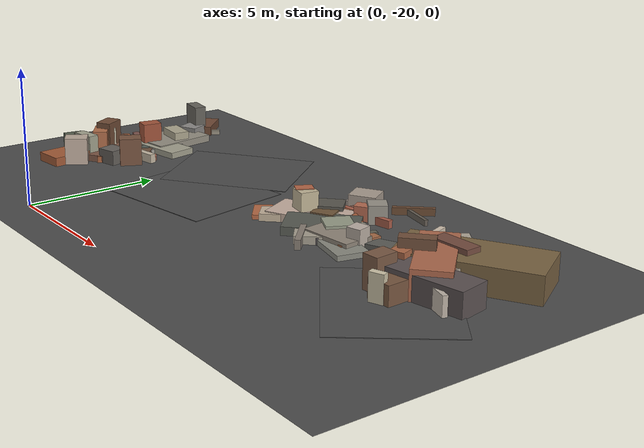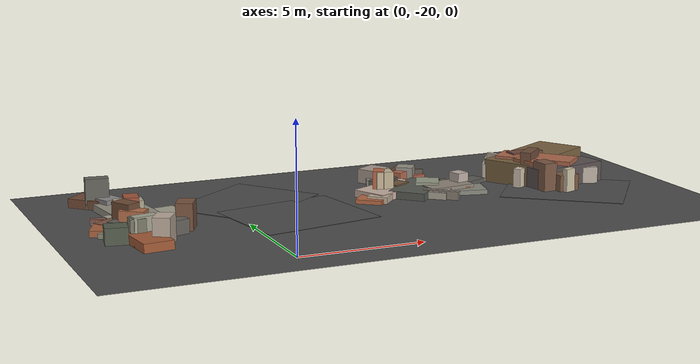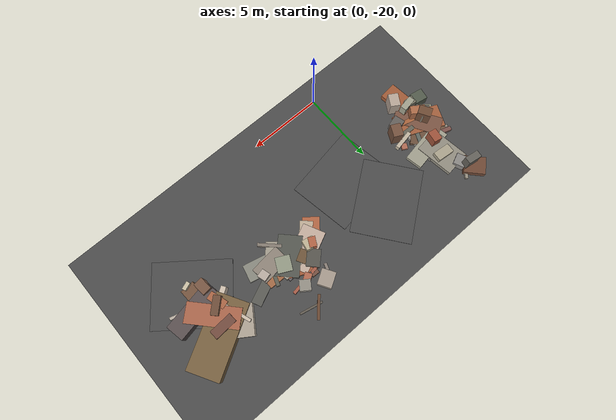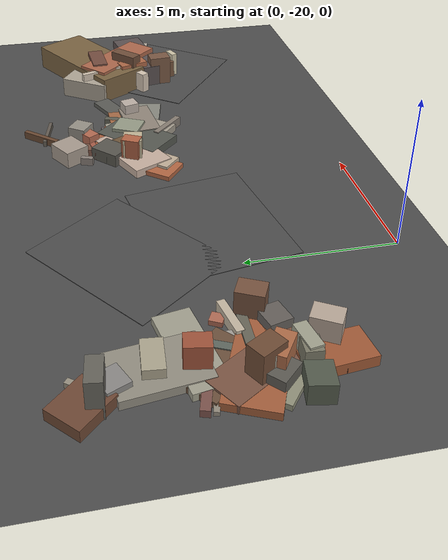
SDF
<sdf version="1.6">
 <world name="navitas_arena">
  <model name="ground_plane">
   <static>true</static>
   <link name="link">
    <collision name="collision">
     <geometry><plane><normal>0 0 1</normal><size>400 400</size></plane></geometry>
     <surface><friction><ode><mu>0.800</mu><mu2>0.800</mu2></ode></friction></surface>
    </collision>
    <visual name="visual">
     <cast_shadows>false</cast_shadows>
     <geometry><plane><normal>0 0 1</normal><size>400 400</size></plane></geometry>
     <material>
      <specular>0.04 0.04 0.04 1</specular>
      <script>
       <uri>file://media/materials/scripts/navitas_asphalt.material</uri>
       <name>Navitas/RealArenaAsphalt</name>
      </script>
     </material>
    </visual>
   </link>
  </model>
  <model name="road_orta_2_3">
   <static>true</static>
   <pose>2.206 -14.464 0.040 0 0 1.740</pose>
   <link name="link">
    <collision name="col"><geometry><box><size>4.171 5.000 0.020</size></box></geometry></collision>
    <visual name="vis">
     <geometry><box><size>4.171 5.000 0.020</size></box></geometry>
     <material>
      <specular>0.04 0.04 0.04 1</specular>
      <script>
       <uri>file://media/materials/scripts/navitas_asphalt.material</uri>
       <name>Navitas/RealArenaAsphalt</name>
      </script>
     </material>
    </visual>
   </link>
  </model>
  <model name="road_orta_2_4">
   <static>true</static>
   <pose>1.013 -11.639 0.040 0 0 2.219</pose>
   <link name="link">
    <collision name="col"><geometry><box><size>3.943 5.000 0.020</size></box></geometry></collision>
    <visual name="vis">
     <geometry><box><size>3.943 5.000 0.020</size></box></geometry>
     <material>
      <specular>0.04 0.04 0.04 1</specular>
      <script>
       <uri>file://media/materials/scripts/navitas_asphalt.material</uri>
       <name>Navitas/RealArenaAsphalt</name>
      </script>
     </material>
    </visual>
   </link>
  </model>
  <model name="road_orta_3_6">
   <static>true</static>
   <pose>14.041 -15.042 0.040 0 0 0.914</pose>
   <link name="link">
    <collision name="col"><geometry><box><size>4.137 5.000 0.020</size></box></geometry></collision>
    <visual name="vis">
     <geometry><box><size>4.137 5.000 0.020</size></box></geometry>
     <material>
      <specular>0.04 0.04 0.04 1</specular>
      <script>
       <uri>file://media/materials/scripts/navitas_asphalt.material</uri>
       <name>Navitas/RealArenaAsphalt</name>
      </script>
     </material>
    </visual>
   </link>
  </model>
  <model name="blk_orta_3_0_1">
   <static>true</static>
   <pose>13.831 -14.265 0.000 0 0 0</pose>
   <link name="link">
    <collision name="col_0">
     <pose>0.062 -1.164 0.506 0.000 0.000 0.360</pose>
     <geometry><box><size>0.519 0.242 1.012</size></box></geometry>
    </collision>
    <visual name="vis_0">
     <pose>0.062 -1.164 0.506 0.000 0.000 0.360</pose>
     <geometry><box><size>0.519 0.242 1.012</size></box></geometry>
     <material>
      <ambient>0.75 0.71 0.62 1</ambient>
      <diffuse>0.81 0.77 0.66 1</diffuse>
      <specular>0.05 0.05 0.045 1</specular>
     </material>
    </visual>
    <collision name="col_1">
     <pose>0.605 0.252 0.447 0.000 0.000 0.191</pose>
     <geometry><box><size>3.374 1.195 0.893</size></box></geometry>
    </collision>
    <visual name="vis_1">
     <pose>0.605 0.252 0.447 0.000 0.000 0.191</pose>
     <geometry><box><size>3.374 1.195 0.893</size></box></geometry>
     <material>
      <ambient>0.33 0.29 0.29 1</ambient>
      <diffuse>0.36 0.32 0.32 1</diffuse>
      <specular>0.05 0.05 0.045 1</specular>
     </material>
    </visual>
    <collision name="col_2">
     <pose>0.068 -0.554 0.365 0.000 0.000 1.612</pose>
     <geometry><box><size>1.249 0.898 0.730</size></box></geometry>
    </collision>
    <visual name="vis_2">
     <pose>0.068 -0.554 0.365 0.000 0.000 1.612</pose>
     <geometry><box><size>1.249 0.898 0.730</size></box></geometry>
     <material>
      <ambient>0.43 0.32 0.23 1</ambient>
      <diffuse>0.47 0.34 0.25 1</diffuse>
      <specular>0.05 0.05 0.045 1</specular>
     </material>
    </visual>
    <collision name="col_3">
     <pose>-0.608 0.942 0.718 0.000 0.000 0.751</pose>
     <geometry><box><size>1.172 0.461 1.435</size></box></geometry>
    </collision>
    <visual name="vis_3">
     <pose>-0.608 0.942 0.718 0.000 0.000 0.751</pose>
     <geometry><box><size>1.172 0.461 1.435</size></box></geometry>
     <material>
      <ambient>0.41 0.29 0.21 1</ambient>
      <diffuse>0.44 0.31 0.23 1</diffuse>
      <specular>0.05 0.05 0.045 1</specular>
     </material>
    </visual>
    <collision name="col_4">
     <pose>-0.730 0.856 0.422 0.000 0.000 0.603</pose>
     <geometry><box><size>2.111 0.318 0.845</size></box></geometry>
    </collision>
    <visual name="vis_4">
     <pose>-0.730 0.856 0.422 0.000 0.000 0.603</pose>
     <geometry><box><size>2.111 0.318 0.845</size></box></geometry>
     <material>
      <ambient>0.77 0.72 0.65 1</ambient>
      <diffuse>0.83 0.77 0.70 1</diffuse>
      <specular>0.05 0.05 0.045 1</specular>
     </material>
    </visual>
    <collision name="col_5">
     <pose>-0.672 -0.471 0.613 0.000 0.000 1.647</pose>
     <geometry><box><size>0.845 0.605 1.227</size></box></geometry>
    </collision>
    <visual name="vis_5">
     <pose>-0.672 -0.471 0.613 0.000 0.000 1.647</pose>
     <geometry><box><size>0.845 0.605 1.227</size></box></geometry>
     <material>
      <ambient>0.45 0.32 0.25 1</ambient>
      <diffuse>0.48 0.35 0.27 1</diffuse>
      <specular>0.05 0.05 0.045 1</specular>
     </material>
    </visual>
    <collision name="col_6">
     <pose>-0.833 0.709 0.553 0.000 0.000 1.878</pose>
     <geometry><box><size>1.165 0.530 1.105</size></box></geometry>
    </collision>
    <visual name="vis_6">
     <pose>-0.833 0.709 0.553 0.000 0.000 1.878</pose>
     <geometry><box><size>1.165 0.530 1.105</size></box></geometry>
     <material>
      <ambient>0.63 0.38 0.26 1</ambient>
      <diffuse>0.68 0.41 0.28 1</diffuse>
      <specular>0.05 0.05 0.045 1</specular>
     </material>
    </visual>
   </link>
  </model>
  <model name="blk_orta_3_0_4">
   <static>true</static>
   <pose>13.922 -13.203 0.000 0 0 0</pose>
   <link name="link">
    <collision name="col_0">
     <pose>-0.182 0.173 0.540 0.000 0.000 2.313</pose>
     <geometry><box><size>3.299 1.283 1.080</size></box></geometry>
    </collision>
    <visual name="vis_0">
     <pose>-0.182 0.173 0.540 0.000 0.000 2.313</pose>
     <geometry><box><size>3.299 1.283 1.080</size></box></geometry>
     <material>
      <ambient>0.63 0.38 0.27 1</ambient>
      <diffuse>0.68 0.41 0.30 1</diffuse>
      <specular>0.05 0.05 0.045 1</specular>
     </material>
    </visual>
    <collision name="col_1">
     <pose>0.323 1.282 0.481 0.000 0.000 0.523</pose>
     <geometry><box><size>4.747 2.093 0.962</size></box></geometry>
    </collision>
    <visual name="vis_1">
     <pose>0.323 1.282 0.481 0.000 0.000 0.523</pose>
     <geometry><box><size>4.747 2.093 0.962</size></box></geometry>
     <material>
      <ambient>0.44 0.36 0.24 1</ambient>
      <diffuse>0.48 0.39 0.26 1</diffuse>
      <specular>0.05 0.05 0.045 1</specular>
     </material>
    </visual>
    <collision name="col_2">
     <pose>-0.268 1.052 0.574 0.000 0.000 3.199</pose>
     <geometry><box><size>1.493 0.596 1.147</size></box></geometry>
    </collision>
    <visual name="vis_2">
     <pose>-0.268 1.052 0.574 0.000 0.000 3.199</pose>
     <geometry><box><size>1.493 0.596 1.147</size></box></geometry>
     <material>
      <ambient>0.43 0.28 0.23 1</ambient>
      <diffuse>0.46 0.30 0.25 1</diffuse>
      <specular>0.05 0.05 0.045 1</specular>
     </material>
    </visual>
    <collision name="col_3">
     <pose>-1.197 0.520 0.524 0.000 0.000 1.902</pose>
     <geometry><box><size>2.761 0.190 1.049</size></box></geometry>
    </collision>
    <visual name="vis_3">
     <pose>-1.197 0.520 0.524 0.000 0.000 1.902</pose>
     <geometry><box><size>2.761 0.190 1.049</size></box></geometry>
     <material>
      <ambient>0.76 0.70 0.64 1</ambient>
      <diffuse>0.82 0.76 0.69 1</diffuse>
      <specular>0.05 0.05 0.045 1</specular>
     </material>
    </visual>
    <collision name="col_4">
     <pose>0.325 -0.960 0.512 0.000 0.000 0.507</pose>
     <geometry><box><size>0.289 0.502 1.023</size></box></geometry>
    </collision>
    <visual name="vis_4">
     <pose>0.325 -0.960 0.512 0.000 0.000 0.507</pose>
     <geometry><box><size>0.289 0.502 1.023</size></box></geometry>
     <material>
      <ambient>0.28 0.32 0.28 1</ambient>
      <diffuse>0.31 0.34 0.30 1</diffuse>
      <specular>0.05 0.05 0.045 1</specular>
     </material>
    </visual>
    <collision name="col_5">
     <pose>0.810 -1.049 0.368 0.000 0.000 2.853</pose>
     <geometry><box><size>2.265 0.176 0.735</size></box></geometry>
    </collision>
    <visual name="vis_5">
     <pose>0.810 -1.049 0.368 0.000 0.000 2.853</pose>
     <geometry><box><size>2.265 0.176 0.735</size></box></geometry>
     <material>
      <ambient>0.68 0.64 0.60 1</ambient>
      <diffuse>0.74 0.70 0.65 1</diffuse>
      <specular>0.05 0.05 0.045 1</specular>
     </material>
    </visual>
    <collision name="col_6">
     <pose>-0.583 1.009 0.378 0.000 0.000 2.552</pose>
     <geometry><box><size>2.969 1.931 0.757</size></box></geometry>
    </collision>
    <visual name="vis_6">
     <pose>-0.583 1.009 0.378 0.000 0.000 2.552</pose>
     <geometry><box><size>2.969 1.931 0.757</size></box></geometry>
     <material>
      <ambient>0.64 0.61 0.54 1</ambient>
      <diffuse>0.69 0.65 0.59 1</diffuse>
      <specular>0.05 0.05 0.045 1</specular>
     </material>
    </visual>
   </link>
  </model>
  <model name="deb_orta_28">
   <static>true</static>
   <pose>9.663 -12.644 0.000 0 0 0</pose>
   <link name="link">
    <collision name="col_0">
     <pose>-0.096 0.132 0.123 0.000 0.000 1.243</pose>
     <geometry><box><size>1.149 0.236 0.245</size></box></geometry>
    </collision>
    <visual name="vis_0">
     <pose>-0.096 0.132 0.123 0.000 0.000 1.243</pose>
     <geometry><box><size>1.149 0.236 0.245</size></box></geometry>
     <material>
      <ambient>0.36 0.35 0.31 1</ambient>
      <diffuse>0.38 0.38 0.33 1</diffuse>
      <specular>0.05 0.05 0.045 1</specular>
     </material>
    </visual>
    <collision name="col_1">
     <pose>-0.175 -0.064 0.107 0.000 0.000 1.599</pose>
     <geometry><box><size>0.472 0.303 0.213</size></box></geometry>
    </collision>
    <visual name="vis_1">
     <pose>-0.175 -0.064 0.107 0.000 0.000 1.599</pose>
     <geometry><box><size>0.472 0.303 0.213</size></box></geometry>
     <material>
      <ambient>0.54 0.48 0.45 1</ambient>
      <diffuse>0.58 0.52 0.49 1</diffuse>
      <specular>0.05 0.05 0.045 1</specular>
     </material>
    </visual>
    <collision name="col_2">
     <pose>-0.102 -0.308 0.122 0.000 0.000 1.551</pose>
     <geometry><box><size>1.639 1.216 0.245</size></box></geometry>
    </collision>
    <visual name="vis_2">
     <pose>-0.102 -0.308 0.122 0.000 0.000 1.551</pose>
     <geometry><box><size>1.639 1.216 0.245</size></box></geometry>
     <material>
      <ambient>0.61 0.39 0.26 1</ambient>
      <diffuse>0.65 0.42 0.28 1</diffuse>
      <specular>0.05 0.05 0.045 1</specular>
     </material>
    </visual>
    <collision name="col_3">
     <pose>0.502 0.049 0.086 0.000 0.000 3.566</pose>
     <geometry><box><size>2.882 0.672 0.173</size></box></geometry>
    </collision>
    <visual name="vis_3">
     <pose>0.502 0.049 0.086 0.000 0.000 3.566</pose>
     <geometry><box><size>2.882 0.672 0.173</size></box></geometry>
     <material>
      <ambient>0.33 0.33 0.31 1</ambient>
      <diffuse>0.36 0.36 0.34 1</diffuse>
      <specular>0.05 0.05 0.045 1</specular>
     </material>
    </visual>
    <collision name="col_4">
     <pose>0.351 -0.342 0.359 0.000 0.000 1.833</pose>
     <geometry><box><size>0.571 0.542 0.718</size></box></geometry>
    </collision>
    <visual name="vis_4">
     <pose>0.351 -0.342 0.359 0.000 0.000 1.833</pose>
     <geometry><box><size>0.571 0.542 0.718</size></box></geometry>
     <material>
      <ambient>0.68 0.64 0.60 1</ambient>
      <diffuse>0.74 0.69 0.65 1</diffuse>
      <specular>0.05 0.05 0.045 1</specular>
     </material>
    </visual>
   </link>
  </model>
  <model name="deb_orta_90">
   <static>true</static>
   <pose>-4.316 -13.473 0.000 0 0 0</pose>
   <link name="link">
    <collision name="col_0">
     <pose>-0.315 -0.838 0.605 0.000 0.000 2.096</pose>
     <geometry><box><size>0.861 0.616 1.209</size></box></geometry>
    </collision>
    <visual name="vis_0">
     <pose>-0.315 -0.838 0.605 0.000 0.000 2.096</pose>
     <geometry><box><size>0.861 0.616 1.209</size></box></geometry>
     <material>
      <ambient>0.41 0.28 0.20 1</ambient>
      <diffuse>0.44 0.30 0.21 1</diffuse>
      <specular>0.05 0.05 0.045 1</specular>
     </material>
    </visual>
    <collision name="col_1">
     <pose>-0.455 -0.885 0.093 0.000 0.000 0.884</pose>
     <geometry><box><size>1.791 1.254 0.186</size></box></geometry>
    </collision>
    <visual name="vis_1">
     <pose>-0.455 -0.885 0.093 0.000 0.000 0.884</pose>
     <geometry><box><size>1.791 1.254 0.186</size></box></geometry>
     <material>
      <ambient>0.53 0.52 0.44 1</ambient>
      <diffuse>0.57 0.57 0.48 1</diffuse>
      <specular>0.05 0.05 0.045 1</specular>
     </material>
    </visual>
    <collision name="col_2">
     <pose>-0.569 -0.313 0.061 0.000 0.000 2.457</pose>
     <geometry><box><size>1.459 0.271 0.122</size></box></geometry>
    </collision>
    <visual name="vis_2">
     <pose>-0.569 -0.313 0.061 0.000 0.000 2.457</pose>
     <geometry><box><size>1.459 0.271 0.122</size></box></geometry>
     <material>
      <ambient>0.33 0.31 0.30 1</ambient>
      <diffuse>0.36 0.34 0.33 1</diffuse>
      <specular>0.05 0.05 0.045 1</specular>
     </material>
    </visual>
    <collision name="col_3">
     <pose>0.730 0.906 0.088 0.000 0.000 2.599</pose>
     <geometry><box><size>0.477 0.365 0.175</size></box></geometry>
    </collision>
    <visual name="vis_3">
     <pose>0.730 0.906 0.088 0.000 0.000 2.599</pose>
     <geometry><box><size>0.477 0.365 0.175</size></box></geometry>
     <material>
      <ambient>0.47 0.35 0.25 1</ambient>
      <diffuse>0.51 0.38 0.27 1</diffuse>
      <specular>0.05 0.05 0.045 1</specular>
     </material>
    </visual>
    <collision name="col_4">
     <pose>0.019 -0.889 0.133 0.000 0.000 2.124</pose>
     <geometry><box><size>3.145 1.258 0.266</size></box></geometry>
    </collision>
    <visual name="vis_4">
     <pose>0.019 -0.889 0.133 0.000 0.000 2.124</pose>
     <geometry><box><size>3.145 1.258 0.266</size></box></geometry>
     <material>
      <ambient>0.45 0.31 0.25 1</ambient>
      <diffuse>0.49 0.34 0.27 1</diffuse>
      <specular>0.05 0.05 0.045 1</specular>
     </material>
    </visual>
    <collision name="col_5">
     <pose>0.075 0.374 0.081 0.000 0.000 0.357</pose>
     <geometry><box><size>1.777 0.293 0.163</size></box></geometry>
    </collision>
    <visual name="vis_5">
     <pose>0.075 0.374 0.081 0.000 0.000 0.357</pose>
     <geometry><box><size>1.777 0.293 0.163</size></box></geometry>
     <material>
      <ambient>0.44 0.33 0.23 1</ambient>
      <diffuse>0.48 0.35 0.25 1</diffuse>
      <specular>0.05 0.05 0.045 1</specular>
     </material>
    </visual>
    <collision name="col_6">
     <pose>-0.293 -0.852 0.479 0.000 0.000 1.158</pose>
     <geometry><box><size>0.550 0.428 0.957</size></box></geometry>
    </collision>
    <visual name="vis_6">
     <pose>-0.293 -0.852 0.479 0.000 0.000 1.158</pose>
     <geometry><box><size>0.550 0.428 0.957</size></box></geometry>
     <material>
      <ambient>0.72 0.68 0.61 1</ambient>
      <diffuse>0.78 0.74 0.66 1</diffuse>
      <specular>0.05 0.05 0.045 1</specular>
     </material>
    </visual>
   </link>
  </model>
  <model name="deb_orta_119">
   <static>true</static>
   <pose>8.415 -13.535 0.000 0 0 0</pose>
   <link name="link">
    <collision name="col_0">
     <pose>-0.277 0.063 0.145 0.000 0.000 2.433</pose>
     <geometry><box><size>2.169 1.078 0.290</size></box></geometry>
    </collision>
    <visual name="vis_0">
     <pose>-0.277 0.063 0.145 0.000 0.000 2.433</pose>
     <geometry><box><size>2.169 1.078 0.290</size></box></geometry>
     <material>
      <ambient>0.60 0.58 0.52 1</ambient>
      <diffuse>0.65 0.62 0.56 1</diffuse>
      <specular>0.05 0.05 0.045 1</specular>
     </material>
    </visual>
    <collision name="col_1">
     <pose>0.031 0.951 0.156 0.000 0.000 3.262</pose>
     <geometry><box><size>1.516 1.214 0.311</size></box></geometry>
    </collision>
    <visual name="vis_1">
     <pose>0.031 0.951 0.156 0.000 0.000 3.262</pose>
     <geometry><box><size>1.516 1.214 0.311</size></box></geometry>
     <material>
      <ambient>0.60 0.57 0.52 1</ambient>
      <diffuse>0.64 0.62 0.56 1</diffuse>
      <specular>0.05 0.05 0.045 1</specular>
     </material>
    </visual>
    <collision name="col_2">
     <pose>0.862 0.641 0.116 0.000 0.000 1.428</pose>
     <geometry><box><size>0.247 0.285 0.231</size></box></geometry>
    </collision>
    <visual name="vis_2">
     <pose>0.862 0.641 0.116 0.000 0.000 1.428</pose>
     <geometry><box><size>0.247 0.285 0.231</size></box></geometry>
     <material>
      <ambient>0.30 0.30 0.25 1</ambient>
      <diffuse>0.33 0.32 0.27 1</diffuse>
      <specular>0.05 0.05 0.045 1</specular>
     </material>
    </visual>
    <collision name="col_3">
     <pose>0.157 -0.713 0.177 0.000 0.000 2.364</pose>
     <geometry><box><size>1.518 0.211 0.353</size></box></geometry>
    </collision>
    <visual name="vis_3">
     <pose>0.157 -0.713 0.177 0.000 0.000 2.364</pose>
     <geometry><box><size>1.518 0.211 0.353</size></box></geometry>
     <material>
      <ambient>0.49 0.46 0.42 1</ambient>
      <diffuse>0.53 0.49 0.45 1</diffuse>
      <specular>0.05 0.05 0.045 1</specular>
     </material>
    </visual>
   </link>
  </model>
  <model name="deb_orta_121">
   <static>true</static>
   <pose>-4.375 -9.917 0.000 0 0 0</pose>
   <link name="link">
    <collision name="col_0">
     <pose>0.364 0.374 0.090 0.000 0.000 2.507</pose>
     <geometry><box><size>0.198 0.453 0.180</size></box></geometry>
    </collision>
    <visual name="vis_0">
     <pose>0.364 0.374 0.090 0.000 0.000 2.507</pose>
     <geometry><box><size>0.198 0.453 0.180</size></box></geometry>
     <material>
      <ambient>0.56 0.53 0.47 1</ambient>
      <diffuse>0.60 0.57 0.51 1</diffuse>
      <specular>0.05 0.05 0.045 1</specular>
     </material>
    </visual>
    <collision name="col_1">
     <pose>-0.270 -0.507 0.075 0.000 0.000 2.119</pose>
     <geometry><box><size>0.496 0.180 0.150</size></box></geometry>
    </collision>
    <visual name="vis_1">
     <pose>-0.270 -0.507 0.075 0.000 0.000 2.119</pose>
     <geometry><box><size>0.496 0.180 0.150</size></box></geometry>
     <material>
      <ambient>0.38 0.38 0.37 1</ambient>
      <diffuse>0.41 0.41 0.40 1</diffuse>
      <specular>0.05 0.05 0.045 1</specular>
     </material>
    </visual>
    <collision name="col_2">
     <pose>0.063 -0.561 0.232 0.000 0.000 1.985</pose>
     <geometry><box><size>0.725 0.777 0.463</size></box></geometry>
    </collision>
    <visual name="vis_2">
     <pose>0.063 -0.561 0.232 0.000 0.000 1.985</pose>
     <geometry><box><size>0.725 0.777 0.463</size></box></geometry>
     <material>
      <ambient>0.51 0.50 0.49 1</ambient>
      <diffuse>0.55 0.54 0.53 1</diffuse>
      <specular>0.05 0.05 0.045 1</specular>
     </material>
    </visual>
    <collision name="col_3">
     <pose>-0.293 -0.124 0.617 0.000 0.000 3.000</pose>
     <geometry><box><size>0.936 0.473 1.234</size></box></geometry>
    </collision>
    <visual name="vis_3">
     <pose>-0.293 -0.124 0.617 0.000 0.000 3.000</pose>
     <geometry><box><size>0.936 0.473 1.234</size></box></geometry>
     <material>
      <ambient>0.37 0.36 0.34 1</ambient>
      <diffuse>0.40 0.39 0.36 1</diffuse>
      <specular>0.05 0.05 0.045 1</specular>
     </material>
    </visual>
    <collision name="col_4">
     <pose>0.165 -0.428 0.138 0.000 0.000 1.551</pose>
     <geometry><box><size>0.403 0.274 0.277</size></box></geometry>
    </collision>
    <visual name="vis_4">
     <pose>0.165 -0.428 0.138 0.000 0.000 1.551</pose>
     <geometry><box><size>0.403 0.274 0.277</size></box></geometry>
     <material>
      <ambient>0.48 0.45 0.40 1</ambient>
      <diffuse>0.52 0.49 0.43 1</diffuse>
      <specular>0.05 0.05 0.045 1</specular>
     </material>
    </visual>
    <collision name="col_5">
     <pose>-0.454 0.252 0.186 0.000 0.000 2.323</pose>
     <geometry><box><size>1.405 1.165 0.372</size></box></geometry>
    </collision>
    <visual name="vis_5">
     <pose>-0.454 0.252 0.186 0.000 0.000 2.323</pose>
     <geometry><box><size>1.405 1.165 0.372</size></box></geometry>
     <material>
      <ambient>0.41 0.26 0.19 1</ambient>
      <diffuse>0.44 0.29 0.21 1</diffuse>
      <specular>0.05 0.05 0.045 1</specular>
     </material>
    </visual>
   </link>
  </model>
  <model name="deb_orta_138">
   <static>true</static>
   <pose>-3.537 -11.932 0.000 0 0 0</pose>
   <link name="link">
    <collision name="col_0">
     <pose>0.061 -0.710 0.122 0.000 0.000 0.177</pose>
     <geometry><box><size>2.999 1.129 0.245</size></box></geometry>
    </collision>
    <visual name="vis_0">
     <pose>0.061 -0.710 0.122 0.000 0.000 0.177</pose>
     <geometry><box><size>2.999 1.129 0.245</size></box></geometry>
     <material>
      <ambient>0.59 0.58 0.52 1</ambient>
      <diffuse>0.64 0.63 0.56 1</diffuse>
      <specular>0.05 0.05 0.045 1</specular>
     </material>
    </visual>
    <collision name="col_1">
     <pose>-0.384 0.221 0.142 0.000 0.000 1.702</pose>
     <geometry><box><size>2.580 1.758 0.285</size></box></geometry>
    </collision>
    <visual name="vis_1">
     <pose>-0.384 0.221 0.142 0.000 0.000 1.702</pose>
     <geometry><box><size>2.580 1.758 0.285</size></box></geometry>
     <material>
      <ambient>0.54 0.51 0.48 1</ambient>
      <diffuse>0.58 0.56 0.51 1</diffuse>
      <specular>0.05 0.05 0.045 1</specular>
     </material>
    </visual>
    <collision name="col_2">
     <pose>-0.279 0.353 0.297 0.000 0.000 -0.098</pose>
     <geometry><box><size>1.144 0.624 0.594</size></box></geometry>
    </collision>
    <visual name="vis_2">
     <pose>-0.279 0.353 0.297 0.000 0.000 -0.098</pose>
     <geometry><box><size>1.144 0.624 0.594</size></box></geometry>
     <material>
      <ambient>0.63 0.60 0.52 1</ambient>
      <diffuse>0.68 0.65 0.56 1</diffuse>
      <specular>0.05 0.05 0.045 1</specular>
     </material>
    </visual>
    <collision name="col_3">
     <pose>-0.464 -0.770 0.512 0.000 0.000 1.406</pose>
     <geometry><box><size>0.762 0.575 1.024</size></box></geometry>
    </collision>
    <visual name="vis_3">
     <pose>-0.464 -0.770 0.512 0.000 0.000 1.406</pose>
     <geometry><box><size>0.762 0.575 1.024</size></box></geometry>
     <material>
      <ambient>0.59 0.31 0.21 1</ambient>
      <diffuse>0.63 0.33 0.23 1</diffuse>
      <specular>0.05 0.05 0.045 1</specular>
     </material>
    </visual>
   </link>
  </model>
  <model name="deb_orta_167">
   <static>true</static>
   <pose>-4.505 -13.546 0.000 0 0 0</pose>
   <link name="link">
    <collision name="col_0">
     <pose>-0.573 0.844 0.116 0.000 0.000 2.843</pose>
     <geometry><box><size>1.050 0.274 0.231</size></box></geometry>
    </collision>
    <visual name="vis_0">
     <pose>-0.573 0.844 0.116 0.000 0.000 2.843</pose>
     <geometry><box><size>1.050 0.274 0.231</size></box></geometry>
     <material>
      <ambient>0.46 0.31 0.28 1</ambient>
      <diffuse>0.49 0.33 0.30 1</diffuse>
      <specular>0.05 0.05 0.045 1</specular>
     </material>
    </visual>
    <collision name="col_1">
     <pose>0.870 0.381 0.093 0.000 0.000 1.574</pose>
     <geometry><box><size>2.772 1.363 0.186</size></box></geometry>
    </collision>
    <visual name="vis_1">
     <pose>0.870 0.381 0.093 0.000 0.000 1.574</pose>
     <geometry><box><size>2.772 1.363 0.186</size></box></geometry>
     <material>
      <ambient>0.59 0.57 0.55 1</ambient>
      <diffuse>0.64 0.62 0.59 1</diffuse>
      <specular>0.05 0.05 0.045 1</specular>
     </material>
    </visual>
    <collision name="col_2">
     <pose>-0.943 0.678 0.065 0.000 0.000 2.879</pose>
     <geometry><box><size>0.296 0.163 0.131</size></box></geometry>
    </collision>
    <visual name="vis_2">
     <pose>-0.943 0.678 0.065 0.000 0.000 2.879</pose>
     <geometry><box><size>0.296 0.163 0.131</size></box></geometry>
     <material>
      <ambient>0.54 0.51 0.46 1</ambient>
      <diffuse>0.58 0.55 0.49 1</diffuse>
      <specular>0.05 0.05 0.045 1</specular>
     </material>
    </visual>
    <collision name="col_3">
     <pose>0.831 -0.283 0.118 0.000 0.000 4.272</pose>
     <geometry><box><size>1.502 0.271 0.237</size></box></geometry>
    </collision>
    <visual name="vis_3">
     <pose>0.831 -0.283 0.118 0.000 0.000 4.272</pose>
     <geometry><box><size>1.502 0.271 0.237</size></box></geometry>
     <material>
      <ambient>0.35 0.38 0.36 1</ambient>
      <diffuse>0.38 0.41 0.38 1</diffuse>
      <specular>0.05 0.05 0.045 1</specular>
     </material>
    </visual>
    <collision name="col_4">
     <pose>0.046 -1.199 0.493 0.000 0.000 2.543</pose>
     <geometry><box><size>0.985 0.567 0.985</size></box></geometry>
    </collision>
    <visual name="vis_4">
     <pose>0.046 -1.199 0.493 0.000 0.000 2.543</pose>
     <geometry><box><size>0.985 0.567 0.985</size></box></geometry>
     <material>
      <ambient>0.64 0.40 0.27 1</ambient>
      <diffuse>0.69 0.43 0.29 1</diffuse>
      <specular>0.05 0.05 0.045 1</specular>
     </material>
    </visual>
    <collision name="col_5">
     <pose>0.420 0.370 0.100 0.000 0.000 2.309</pose>
     <geometry><box><size>2.228 1.533 0.199</size></box></geometry>
    </collision>
    <visual name="vis_5">
     <pose>0.420 0.370 0.100 0.000 0.000 2.309</pose>
     <geometry><box><size>2.228 1.533 0.199</size></box></geometry>
     <material>
      <ambient>0.40 0.29 0.22 1</ambient>
      <diffuse>0.43 0.32 0.24 1</diffuse>
      <specular>0.05 0.05 0.045 1</specular>
     </material>
    </visual>
    <collision name="col_6">
     <pose>-0.711 -0.521 0.072 0.000 0.000 3.115</pose>
     <geometry><box><size>0.245 0.267 0.144</size></box></geometry>
    </collision>
    <visual name="vis_6">
     <pose>-0.711 -0.521 0.072 0.000 0.000 3.115</pose>
     <geometry><box><size>0.245 0.267 0.144</size></box></geometry>
     <material>
      <ambient>0.44 0.27 0.20 1</ambient>
      <diffuse>0.47 0.29 0.22 1</diffuse>
      <specular>0.05 0.05 0.045 1</specular>
     </material>
    </visual>
   </link>
  </model>
  <model name="deb_orta_182">
   <static>true</static>
   <pose>-3.948 -15.290 0.000 0 0 0</pose>
   <link name="link">
    <collision name="col_0">
     <pose>0.993 0.241 0.287 0.000 0.000 0.263</pose>
     <geometry><box><size>0.790 0.721 0.574</size></box></geometry>
    </collision>
    <visual name="vis_0">
     <pose>0.993 0.241 0.287 0.000 0.000 0.263</pose>
     <geometry><box><size>0.790 0.721 0.574</size></box></geometry>
     <material>
      <ambient>0.37 0.35 0.33 1</ambient>
      <diffuse>0.40 0.38 0.36 1</diffuse>
      <specular>0.05 0.05 0.045 1</specular>
     </material>
    </visual>
    <collision name="col_1">
     <pose>-0.877 0.693 0.287 0.000 0.000 -0.812</pose>
     <geometry><box><size>0.867 0.869 0.574</size></box></geometry>
    </collision>
    <visual name="vis_1">
     <pose>-0.877 0.693 0.287 0.000 0.000 -0.812</pose>
     <geometry><box><size>0.867 0.869 0.574</size></box></geometry>
     <material>
      <ambient>0.35 0.34 0.31 1</ambient>
      <diffuse>0.37 0.36 0.33 1</diffuse>
      <specular>0.05 0.05 0.045 1</specular>
     </material>
    </visual>
    <collision name="col_2">
     <pose>-0.386 -0.986 0.177 0.000 0.000 1.678</pose>
     <geometry><box><size>2.003 1.188 0.354</size></box></geometry>
    </collision>
    <visual name="vis_2">
     <pose>-0.386 -0.986 0.177 0.000 0.000 1.678</pose>
     <geometry><box><size>2.003 1.188 0.354</size></box></geometry>
     <material>
      <ambient>0.59 0.33 0.20 1</ambient>
      <diffuse>0.64 0.36 0.22 1</diffuse>
      <specular>0.05 0.05 0.045 1</specular>
     </material>
    </visual>
    <collision name="col_3">
     <pose>-0.331 -0.227 0.470 0.000 0.000 0.177</pose>
     <geometry><box><size>0.967 0.415 0.940</size></box></geometry>
    </collision>
    <visual name="vis_3">
     <pose>-0.331 -0.227 0.470 0.000 0.000 0.177</pose>
     <geometry><box><size>0.967 0.415 0.940</size></box></geometry>
     <material>
      <ambient>0.59 0.59 0.52 1</ambient>
      <diffuse>0.64 0.64 0.56 1</diffuse>
      <specular>0.05 0.05 0.045 1</specular>
     </material>
    </visual>
    <collision name="col_4">
     <pose>0.989 0.318 0.153 0.000 0.000 -0.508</pose>
     <geometry><box><size>0.249 0.184 0.306</size></box></geometry>
    </collision>
    <visual name="vis_4">
     <pose>0.989 0.318 0.153 0.000 0.000 -0.508</pose>
     <geometry><box><size>0.249 0.184 0.306</size></box></geometry>
     <material>
      <ambient>0.47 0.45 0.45 1</ambient>
      <diffuse>0.51 0.48 0.48 1</diffuse>
      <specular>0.05 0.05 0.045 1</specular>
     </material>
    </visual>
    <collision name="col_5">
     <pose>-0.714 0.425 0.170 0.000 0.000 0.263</pose>
     <geometry><box><size>0.207 0.166 0.339</size></box></geometry>
    </collision>
    <visual name="vis_5">
     <pose>-0.714 0.425 0.170 0.000 0.000 0.263</pose>
     <geometry><box><size>0.207 0.166 0.339</size></box></geometry>
     <material>
      <ambient>0.48 0.47 0.44 1</ambient>
      <diffuse>0.52 0.51 0.47 1</diffuse>
      <specular>0.05 0.05 0.045 1</specular>
     </material>
    </visual>
    <collision name="col_6">
     <pose>-0.352 1.020 0.127 0.000 0.000 -0.416</pose>
     <geometry><box><size>3.163 1.563 0.253</size></box></geometry>
    </collision>
    <visual name="vis_6">
     <pose>-0.352 1.020 0.127 0.000 0.000 -0.416</pose>
     <geometry><box><size>3.163 1.563 0.253</size></box></geometry>
     <material>
      <ambient>0.61 0.35 0.22 1</ambient>
      <diffuse>0.65 0.38 0.24 1</diffuse>
      <specular>0.05 0.05 0.045 1</specular>
     </material>
    </visual>
   </link>
  </model>
  <model name="deb_orta_185">
   <static>true</static>
   <pose>8.649 -13.354 0.000 0 0 0</pose>
   <link name="link">
    <collision name="col_0">
     <pose>0.332 0.475 0.121 0.000 0.000 1.630</pose>
     <geometry><box><size>2.302 0.225 0.242</size></box></geometry>
    </collision>
    <visual name="vis_0">
     <pose>0.332 0.475 0.121 0.000 0.000 1.630</pose>
     <geometry><box><size>2.302 0.225 0.242</size></box></geometry>
     <material>
      <ambient>0.39 0.36 0.37 1</ambient>
      <diffuse>0.42 0.39 0.40 1</diffuse>
      <specular>0.05 0.05 0.045 1</specular>
     </material>
    </visual>
    <collision name="col_1">
     <pose>0.630 0.099 0.172 0.000 0.000 3.246</pose>
     <geometry><box><size>2.003 1.185 0.345</size></box></geometry>
    </collision>
    <visual name="vis_1">
     <pose>0.630 0.099 0.172 0.000 0.000 3.246</pose>
     <geometry><box><size>2.003 1.185 0.345</size></box></geometry>
     <material>
      <ambient>0.52 0.49 0.45 1</ambient>
      <diffuse>0.57 0.53 0.48 1</diffuse>
      <specular>0.05 0.05 0.045 1</specular>
     </material>
    </visual>
    <collision name="col_2">
     <pose>0.632 -0.092 0.096 0.000 0.000 2.913</pose>
     <geometry><box><size>3.087 1.152 0.192</size></box></geometry>
    </collision>
    <visual name="vis_2">
     <pose>0.632 -0.092 0.096 0.000 0.000 2.913</pose>
     <geometry><box><size>3.087 1.152 0.192</size></box></geometry>
     <material>
      <ambient>0.50 0.50 0.47 1</ambient>
      <diffuse>0.54 0.54 0.50 1</diffuse>
      <specular>0.05 0.05 0.045 1</specular>
     </material>
    </visual>
    <collision name="col_3">
     <pose>0.018 0.596 0.222 0.000 0.000 4.243</pose>
     <geometry><box><size>1.009 0.947 0.444</size></box></geometry>
    </collision>
    <visual name="vis_3">
     <pose>0.018 0.596 0.222 0.000 0.000 4.243</pose>
     <geometry><box><size>1.009 0.947 0.444</size></box></geometry>
     <material>
      <ambient>0.55 0.57 0.49 1</ambient>
      <diffuse>0.59 0.61 0.53 1</diffuse>
      <specular>0.05 0.05 0.045 1</specular>
     </material>
    </visual>
    <collision name="col_4">
     <pose>-0.555 0.373 0.157 0.000 0.000 3.917</pose>
     <geometry><box><size>2.623 1.540 0.315</size></box></geometry>
    </collision>
    <visual name="vis_4">
     <pose>-0.555 0.373 0.157 0.000 0.000 3.917</pose>
     <geometry><box><size>2.623 1.540 0.315</size></box></geometry>
     <material>
      <ambient>0.32 0.33 0.30 1</ambient>
      <diffuse>0.34 0.35 0.32 1</diffuse>
      <specular>0.05 0.05 0.045 1</specular>
     </material>
    </visual>
   </link>
  </model>
  <model name="deb_orta_212">
   <static>true</static>
   <pose>8.064 -10.043 0.000 0 0 0</pose>
   <link name="link">
    <collision name="col_0">
     <pose>0.110 -1.149 0.146 0.000 0.000 0.163</pose>
     <geometry><box><size>2.338 0.200 0.292</size></box></geometry>
    </collision>
    <visual name="vis_0">
     <pose>0.110 -1.149 0.146 0.000 0.000 0.163</pose>
     <geometry><box><size>2.338 0.200 0.292</size></box></geometry>
     <material>
      <ambient>0.62 0.34 0.27 1</ambient>
      <diffuse>0.66 0.37 0.29 1</diffuse>
      <specular>0.05 0.05 0.045 1</specular>
     </material>
    </visual>
    <collision name="col_1">
     <pose>0.669 0.619 0.138 0.000 0.000 0.842</pose>
     <geometry><box><size>1.520 0.176 0.276</size></box></geometry>
    </collision>
    <visual name="vis_1">
     <pose>0.669 0.619 0.138 0.000 0.000 0.842</pose>
     <geometry><box><size>1.520 0.176 0.276</size></box></geometry>
     <material>
      <ambient>0.39 0.27 0.19 1</ambient>
      <diffuse>0.42 0.29 0.20 1</diffuse>
      <specular>0.05 0.05 0.045 1</specular>
     </material>
    </visual>
    <collision name="col_2">
     <pose>-0.800 -0.342 0.300 0.000 0.000 0.541</pose>
     <geometry><box><size>1.024 0.910 0.600</size></box></geometry>
    </collision>
    <visual name="vis_2">
     <pose>-0.800 -0.342 0.300 0.000 0.000 0.541</pose>
     <geometry><box><size>1.024 0.910 0.600</size></box></geometry>
     <material>
      <ambient>0.61 0.56 0.52 1</ambient>
      <diffuse>0.66 0.61 0.56 1</diffuse>
      <specular>0.05 0.05 0.045 1</specular>
     </material>
    </visual>
    <collision name="col_3">
     <pose>1.043 0.361 0.109 0.000 0.000 -0.214</pose>
     <geometry><box><size>1.526 0.128 0.218</size></box></geometry>
    </collision>
    <visual name="vis_3">
     <pose>1.043 0.361 0.109 0.000 0.000 -0.214</pose>
     <geometry><box><size>1.526 0.128 0.218</size></box></geometry>
     <material>
      <ambient>0.36 0.33 0.29 1</ambient>
      <diffuse>0.39 0.36 0.32 1</diffuse>
      <specular>0.05 0.05 0.045 1</specular>
     </material>
    </visual>
    <collision name="col_4">
     <pose>0.455 -0.870 0.342 0.000 0.000 0.961</pose>
     <geometry><box><size>0.681 0.707 0.684</size></box></geometry>
    </collision>
    <visual name="vis_4">
     <pose>0.455 -0.870 0.342 0.000 0.000 0.961</pose>
     <geometry><box><size>0.681 0.707 0.684</size></box></geometry>
     <material>
      <ambient>0.54 0.53 0.49 1</ambient>
      <diffuse>0.59 0.57 0.53 1</diffuse>
      <specular>0.05 0.05 0.045 1</specular>
     </material>
    </visual>
    <collision name="col_5">
     <pose>0.077 -1.119 0.272 0.000 0.000 0.585</pose>
     <geometry><box><size>0.671 0.461 0.543</size></box></geometry>
    </collision>
    <visual name="vis_5">
     <pose>0.077 -1.119 0.272 0.000 0.000 0.585</pose>
     <geometry><box><size>0.671 0.461 0.543</size></box></geometry>
     <material>
      <ambient>0.66 0.39 0.30 1</ambient>
      <diffuse>0.71 0.42 0.32 1</diffuse>
      <specular>0.05 0.05 0.045 1</specular>
     </material>
    </visual>
   </link>
  </model>
  <model name="deb_orta_236">
   <static>true</static>
   <pose>-2.472 -13.934 0.000 0 0 0</pose>
   <link name="link">
    <collision name="col_0">
     <pose>-0.575 -0.293 0.166 0.000 0.000 -0.034</pose>
     <geometry><box><size>1.308 0.296 0.331</size></box></geometry>
    </collision>
    <visual name="vis_0">
     <pose>-0.575 -0.293 0.166 0.000 0.000 -0.034</pose>
     <geometry><box><size>1.308 0.296 0.331</size></box></geometry>
     <material>
      <ambient>0.38 0.37 0.32 1</ambient>
      <diffuse>0.41 0.40 0.35 1</diffuse>
      <specular>0.05 0.05 0.045 1</specular>
     </material>
    </visual>
    <collision name="col_1">
     <pose>-0.086 0.002 0.177 0.000 0.000 0.181</pose>
     <geometry><box><size>1.339 0.254 0.355</size></box></geometry>
    </collision>
    <visual name="vis_1">
     <pose>-0.086 0.002 0.177 0.000 0.000 0.181</pose>
     <geometry><box><size>1.339 0.254 0.355</size></box></geometry>
     <material>
      <ambient>0.71 0.67 0.59 1</ambient>
      <diffuse>0.77 0.72 0.64 1</diffuse>
      <specular>0.05 0.05 0.045 1</specular>
     </material>
    </visual>
    <collision name="col_2">
     <pose>0.102 0.323 0.083 0.000 0.000 -0.497</pose>
     <geometry><box><size>0.390 0.401 0.166</size></box></geometry>
    </collision>
    <visual name="vis_2">
     <pose>0.102 0.323 0.083 0.000 0.000 -0.497</pose>
     <geometry><box><size>0.390 0.401 0.166</size></box></geometry>
     <material>
      <ambient>0.65 0.40 0.31 1</ambient>
      <diffuse>0.70 0.43 0.34 1</diffuse>
      <specular>0.05 0.05 0.045 1</specular>
     </material>
    </visual>
    <collision name="col_3">
     <pose>0.097 -0.619 0.539 0.000 0.000 1.108</pose>
     <geometry><box><size>0.854 0.661 1.077</size></box></geometry>
    </collision>
    <visual name="vis_3">
     <pose>0.097 -0.619 0.539 0.000 0.000 1.108</pose>
     <geometry><box><size>0.854 0.661 1.077</size></box></geometry>
     <material>
      <ambient>0.44 0.31 0.23 1</ambient>
      <diffuse>0.47 0.33 0.25 1</diffuse>
      <specular>0.05 0.05 0.045 1</specular>
     </material>
    </visual>
   </link>
  </model>
  <model name="deb_orta_239">
   <static>true</static>
   <pose>-4.344 -15.722 0.000 0 0 0</pose>
   <link name="link">
    <collision name="col_0">
     <pose>-1.000 0.224 0.331 0.000 0.000 1.395</pose>
     <geometry><box><size>0.759 0.868 0.661</size></box></geometry>
    </collision>
    <visual name="vis_0">
     <pose>-1.000 0.224 0.331 0.000 0.000 1.395</pose>
     <geometry><box><size>0.759 0.868 0.661</size></box></geometry>
     <material>
      <ambient>0.31 0.34 0.28 1</ambient>
      <diffuse>0.33 0.36 0.30 1</diffuse>
      <specular>0.05 0.05 0.045 1</specular>
     </material>
    </visual>
    <collision name="col_1">
     <pose>-0.205 0.190 0.440 0.000 0.000 1.503</pose>
     <geometry><box><size>0.512 0.611 0.879</size></box></geometry>
    </collision>
    <visual name="vis_1">
     <pose>-0.205 0.190 0.440 0.000 0.000 1.503</pose>
     <geometry><box><size>0.512 0.611 0.879</size></box></geometry>
     <material>
      <ambient>0.46 0.44 0.38 1</ambient>
      <diffuse>0.49 0.48 0.41 1</diffuse>
      <specular>0.05 0.05 0.045 1</specular>
     </material>
    </visual>
    <collision name="col_2">
     <pose>-0.224 1.251 0.086 0.000 0.000 3.352</pose>
     <geometry><box><size>1.600 1.097 0.172</size></box></geometry>
    </collision>
    <visual name="vis_2">
     <pose>-0.224 1.251 0.086 0.000 0.000 3.352</pose>
     <geometry><box><size>1.600 1.097 0.172</size></box></geometry>
     <material>
      <ambient>0.42 0.32 0.25 1</ambient>
      <diffuse>0.45 0.34 0.27 1</diffuse>
      <specular>0.05 0.05 0.045 1</specular>
     </material>
    </visual>
    <collision name="col_3">
     <pose>0.685 0.962 0.137 0.000 0.000 2.904</pose>
     <geometry><box><size>1.456 0.288 0.274</size></box></geometry>
    </collision>
    <visual name="vis_3">
     <pose>0.685 0.962 0.137 0.000 0.000 2.904</pose>
     <geometry><box><size>1.456 0.288 0.274</size></box></geometry>
     <material>
      <ambient>0.62 0.37 0.22 1</ambient>
      <diffuse>0.67 0.40 0.24 1</diffuse>
      <specular>0.05 0.05 0.045 1</specular>
     </material>
    </visual>
    <collision name="col_4">
     <pose>0.435 0.334 0.083 0.000 0.000 0.992</pose>
     <geometry><box><size>2.530 0.794 0.166</size></box></geometry>
    </collision>
    <visual name="vis_4">
     <pose>0.435 0.334 0.083 0.000 0.000 0.992</pose>
     <geometry><box><size>2.530 0.794 0.166</size></box></geometry>
     <material>
      <ambient>0.47 0.33 0.23 1</ambient>
      <diffuse>0.51 0.36 0.24 1</diffuse>
      <specular>0.05 0.05 0.045 1</specular>
     </material>
    </visual>
    <collision name="col_5">
     <pose>0.613 -0.516 0.528 0.000 0.000 2.603</pose>
     <geometry><box><size>0.670 0.880 1.056</size></box></geometry>
    </collision>
    <visual name="vis_5">
     <pose>0.613 -0.516 0.528 0.000 0.000 2.603</pose>
     <geometry><box><size>0.670 0.880 1.056</size></box></geometry>
     <material>
      <ambient>0.68 0.61 0.56 1</ambient>
      <diffuse>0.73 0.66 0.60 1</diffuse>
      <specular>0.05 0.05 0.045 1</specular>
     </material>
    </visual>
    <collision name="col_6">
     <pose>-0.388 -0.764 0.086 0.000 0.000 3.578</pose>
     <geometry><box><size>0.279 0.309 0.172</size></box></geometry>
    </collision>
    <visual name="vis_6">
     <pose>-0.388 -0.764 0.086 0.000 0.000 3.578</pose>
     <geometry><box><size>0.279 0.309 0.172</size></box></geometry>
     <material>
      <ambient>0.36 0.24 0.17 1</ambient>
      <diffuse>0.39 0.26 0.18 1</diffuse>
      <specular>0.05 0.05 0.045 1</specular>
     </material>
    </visual>
   </link>
  </model>
  <model name="deb_orta_248">
   <static>true</static>
   <pose>6.476 -13.006 0.000 0 0 0</pose>
   <link name="link">
    <collision name="col_0">
     <pose>-0.477 -0.281 0.085 0.000 0.000 0.889</pose>
     <geometry><box><size>1.811 1.095 0.170</size></box></geometry>
    </collision>
    <visual name="vis_0">
     <pose>-0.477 -0.281 0.085 0.000 0.000 0.889</pose>
     <geometry><box><size>1.811 1.095 0.170</size></box></geometry>
     <material>
      <ambient>0.66 0.38 0.25 1</ambient>
      <diffuse>0.71 0.41 0.27 1</diffuse>
      <specular>0.05 0.05 0.045 1</specular>
     </material>
    </visual>
    <collision name="col_1">
     <pose>0.047 -0.186 0.134 0.000 0.000 0.826</pose>
     <geometry><box><size>2.071 0.832 0.269</size></box></geometry>
    </collision>
    <visual name="vis_1">
     <pose>0.047 -0.186 0.134 0.000 0.000 0.826</pose>
     <geometry><box><size>2.071 0.832 0.269</size></box></geometry>
     <material>
      <ambient>0.70 0.64 0.56 1</ambient>
      <diffuse>0.76 0.69 0.60 1</diffuse>
      <specular>0.05 0.05 0.045 1</specular>
     </material>
    </visual>
    <collision name="col_2">
     <pose>0.043 0.432 0.517 0.000 0.000 1.094</pose>
     <geometry><box><size>0.643 0.463 1.033</size></box></geometry>
    </collision>
    <visual name="vis_2">
     <pose>0.043 0.432 0.517 0.000 0.000 1.094</pose>
     <geometry><box><size>0.643 0.463 1.033</size></box></geometry>
     <material>
      <ambient>0.65 0.37 0.25 1</ambient>
      <diffuse>0.71 0.40 0.28 1</diffuse>
      <specular>0.05 0.05 0.045 1</specular>
     </material>
    </visual>
    <collision name="col_3">
     <pose>0.216 0.367 0.503 0.000 0.000 1.388</pose>
     <geometry><box><size>0.676 0.705 1.006</size></box></geometry>
    </collision>
    <visual name="vis_3">
     <pose>0.216 0.367 0.503 0.000 0.000 1.388</pose>
     <geometry><box><size>0.676 0.705 1.006</size></box></geometry>
     <material>
      <ambient>0.70 0.66 0.55 1</ambient>
      <diffuse>0.76 0.71 0.59 1</diffuse>
      <specular>0.05 0.05 0.045 1</specular>
     </material>
    </visual>
   </link>
  </model>
  <model name="deb_orta_264">
   <static>true</static>
   <pose>7.189 -11.208 0.000 0 0 0</pose>
   <link name="link">
    <collision name="col_0">
     <pose>-0.419 0.247 0.141 0.000 0.000 2.800</pose>
     <geometry><box><size>0.188 0.450 0.282</size></box></geometry>
    </collision>
    <visual name="vis_0">
     <pose>-0.419 0.247 0.141 0.000 0.000 2.800</pose>
     <geometry><box><size>0.188 0.450 0.282</size></box></geometry>
     <material>
      <ambient>0.50 0.47 0.44 1</ambient>
      <diffuse>0.54 0.50 0.47 1</diffuse>
      <specular>0.05 0.05 0.045 1</specular>
     </material>
    </visual>
    <collision name="col_1">
     <pose>-0.151 -0.469 0.100 0.000 0.000 1.804</pose>
     <geometry><box><size>0.347 0.283 0.201</size></box></geometry>
    </collision>
    <visual name="vis_1">
     <pose>-0.151 -0.469 0.100 0.000 0.000 1.804</pose>
     <geometry><box><size>0.347 0.283 0.201</size></box></geometry>
     <material>
      <ambient>0.45 0.47 0.42 1</ambient>
      <diffuse>0.48 0.50 0.45 1</diffuse>
      <specular>0.05 0.05 0.045 1</specular>
     </material>
    </visual>
    <collision name="col_2">
     <pose>0.360 0.063 0.133 0.000 0.000 3.100</pose>
     <geometry><box><size>0.488 0.308 0.265</size></box></geometry>
    </collision>
    <visual name="vis_2">
     <pose>0.360 0.063 0.133 0.000 0.000 3.100</pose>
     <geometry><box><size>0.488 0.308 0.265</size></box></geometry>
     <material>
      <ambient>0.44 0.30 0.24 1</ambient>
      <diffuse>0.47 0.32 0.26 1</diffuse>
      <specular>0.05 0.05 0.045 1</specular>
     </material>
    </visual>
    <collision name="col_3">
     <pose>0.732 -0.091 0.146 0.000 0.000 3.028</pose>
     <geometry><box><size>0.408 0.176 0.292</size></box></geometry>
    </collision>
    <visual name="vis_3">
     <pose>0.732 -0.091 0.146 0.000 0.000 3.028</pose>
     <geometry><box><size>0.408 0.176 0.292</size></box></geometry>
     <material>
      <ambient>0.30 0.29 0.31 1</ambient>
      <diffuse>0.33 0.32 0.33 1</diffuse>
      <specular>0.05 0.05 0.045 1</specular>
     </material>
    </visual>
   </link>
  </model>
  <model name="deb_orta_276">
   <static>true</static>
   <pose>7.347 -12.351 0.000 0 0 0</pose>
   <link name="link">
    <collision name="col_0">
     <pose>-0.328 -0.304 0.153 0.000 0.000 0.443</pose>
     <geometry><box><size>2.815 1.518 0.305</size></box></geometry>
    </collision>
    <visual name="vis_0">
     <pose>-0.328 -0.304 0.153 0.000 0.000 0.443</pose>
     <geometry><box><size>2.815 1.518 0.305</size></box></geometry>
     <material>
      <ambient>0.73 0.64 0.58 1</ambient>
      <diffuse>0.78 0.69 0.63 1</diffuse>
      <specular>0.05 0.05 0.045 1</specular>
     </material>
    </visual>
    <collision name="col_1">
     <pose>-0.313 0.482 0.231 0.000 0.000 0.768</pose>
     <geometry><box><size>1.109 0.871 0.461</size></box></geometry>
    </collision>
    <visual name="vis_1">
     <pose>-0.313 0.482 0.231 0.000 0.000 0.768</pose>
     <geometry><box><size>1.109 0.871 0.461</size></box></geometry>
     <material>
      <ambient>0.33 0.32 0.29 1</ambient>
      <diffuse>0.35 0.34 0.31 1</diffuse>
      <specular>0.05 0.05 0.045 1</specular>
     </material>
    </visual>
    <collision name="col_2">
     <pose>0.016 0.125 0.184 0.000 0.000 0.500</pose>
     <geometry><box><size>0.841 0.943 0.367</size></box></geometry>
    </collision>
    <visual name="vis_2">
     <pose>0.016 0.125 0.184 0.000 0.000 0.500</pose>
     <geometry><box><size>0.841 0.943 0.367</size></box></geometry>
     <material>
      <ambient>0.40 0.31 0.21 1</ambient>
      <diffuse>0.44 0.34 0.23 1</diffuse>
      <specular>0.05 0.05 0.045 1</specular>
     </material>
    </visual>
    <collision name="col_3">
     <pose>0.588 0.004 0.143 0.000 0.000 -0.429</pose>
     <geometry><box><size>1.626 1.724 0.285</size></box></geometry>
    </collision>
    <visual name="vis_3">
     <pose>0.588 0.004 0.143 0.000 0.000 -0.429</pose>
     <geometry><box><size>1.626 1.724 0.285</size></box></geometry>
     <material>
      <ambient>0.60 0.34 0.22 1</ambient>
      <diffuse>0.65 0.37 0.24 1</diffuse>
      <specular>0.05 0.05 0.045 1</specular>
     </material>
    </visual>
    <collision name="col_4">
     <pose>0.526 -0.026 0.110 0.000 0.000 1.726</pose>
     <geometry><box><size>0.464 0.218 0.219</size></box></geometry>
    </collision>
    <visual name="vis_4">
     <pose>0.526 -0.026 0.110 0.000 0.000 1.726</pose>
     <geometry><box><size>0.464 0.218 0.219</size></box></geometry>
     <material>
      <ambient>0.54 0.49 0.48 1</ambient>
      <diffuse>0.59 0.53 0.52 1</diffuse>
      <specular>0.05 0.05 0.045 1</specular>
     </material>
    </visual>
    <collision name="col_5">
     <pose>-0.483 -0.350 0.070 0.000 0.000 0.966</pose>
     <geometry><box><size>0.389 0.451 0.141</size></box></geometry>
    </collision>
    <visual name="vis_5">
     <pose>-0.483 -0.350 0.070 0.000 0.000 0.966</pose>
     <geometry><box><size>0.389 0.451 0.141</size></box></geometry>
     <material>
      <ambient>0.27 0.30 0.24 1</ambient>
      <diffuse>0.29 0.32 0.26 1</diffuse>
      <specular>0.05 0.05 0.045 1</specular>
     </material>
    </visual>
    <collision name="col_6">
     <pose>0.078 0.429 0.145 0.000 0.000 -0.256</pose>
     <geometry><box><size>1.669 0.156 0.291</size></box></geometry>
    </collision>
    <visual name="vis_6">
     <pose>0.078 0.429 0.145 0.000 0.000 -0.256</pose>
     <geometry><box><size>1.669 0.156 0.291</size></box></geometry>
     <material>
      <ambient>0.60 0.61 0.55 1</ambient>
      <diffuse>0.65 0.66 0.60 1</diffuse>
      <specular>0.05 0.05 0.045 1</specular>
     </material>
    </visual>
   </link>
  </model>
 </world>
</sdf>
